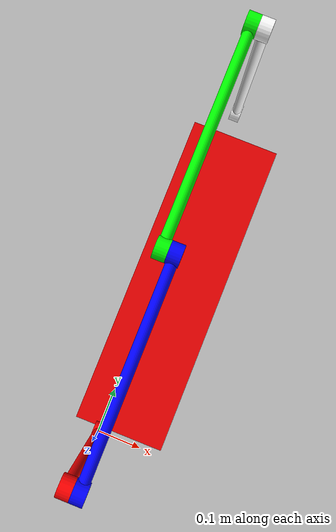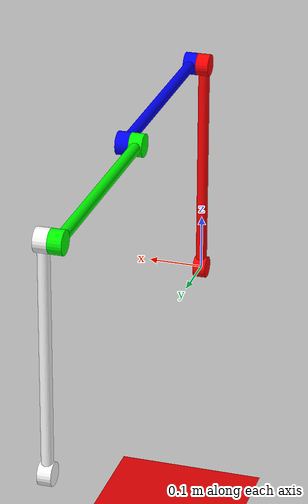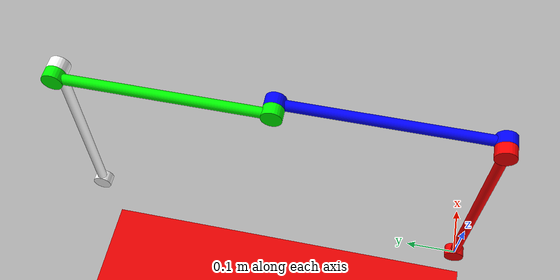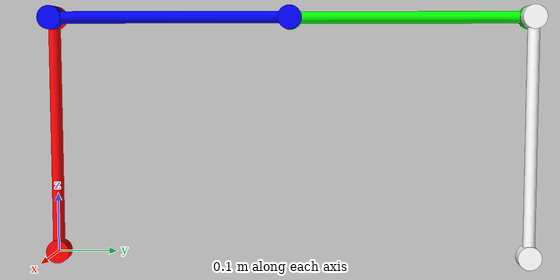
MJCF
<mujoco>
    <option timestep="0.0002" />
    <actuator>
        <motor gear="0.05" joint="hinge_1" name="actuator_motor" ctrlrange="-300 300" ctrllimited="true"/>
        <motor gear="0.05" joint="hinge_5" name="actuator_motor2" ctrlrange="-300 300" ctrllimited="true"/>
    </actuator>
    <asset>
        <material name="blue" rgba="0 0 1 1" />
        <material name="green" rgba="0 1 0 1" />
        <material name="red" rgba="1 0 0 1" />
        <material name="white" rgba="1 1 1 1" />
    </asset>
    <worldbody>
        <geom type="plane" size="1 1 0.1" pos="0 0 -0.5" rgba=".9 0 0 1" />
        <light diffuse=".5 .5 .5" pos="0 0 10" dir="0 0 -1" />
        <body name="link_1" pos="0 0 0">
            <joint name="hinge_1" pos="0 0 0" axis="1 0 0" />
            <geom type="cylinder" size=".01 0.2" pos="0 0 0.2" euler="0 0 0" material="red" />
            <geom type="cylinder" size=".0198 .0115" pos="0 0 0.4" euler="0 90 0" material="red" mass="0.065"/>
            <geom type="cylinder" size=".0198 .0115" pos="0 0 0" euler="0 90 0" material="red" mass="0.065"/>
            <body name="link_2" pos="0.023 0 0.4" euler="0 0 0">
                <joint name="hinge_2" pos="0 0 0" axis="1 0 0" />
                <geom type="cylinder" size=".01 0.2" pos="0 0.2 0" euler="90 0 0" material="blue" />
                <geom type="cylinder" size=".0198 .0115" pos="0 0.4 0" euler="0 90 0" material="blue" />
                <geom type="cylinder" size=".0198 .0115" pos="0 0 0" euler="0 90 0" material="blue" />
                <body name="link_3" pos="-0.023 0.4 0" euler="-90 0 0">
                    <joint name="hinge_3" pos="0 0 0" axis="1 0 0" />
                    <geom type="cylinder" size=".01 0.2" pos="0 0 0.2" euler="0 0 0" material="green" />
                    <geom type="cylinder" size=".0198 .0115" pos="0 0 0" euler="0 90 0" material="green" />
                    <geom type="cylinder" size=".0198 .0115" pos="0 0 0.4" euler="0 90 0" material="green" />
                    <body name="link_4" pos="0.023 0 0.4" euler="180 0 0">
                        <joint name="hinge_4" pos="0 0 0" axis="1 0 0" />
                        <geom type="cylinder" size=".01 0.2" pos="0 -0.2 0" euler="90 0 0" material="white" />
                        <geom type="cylinder" size=".0198 .0115" pos="0 0 0" euler="0 90 0" material="white" />
                        <body name="link_5" pos="0 -0.4 0" euler="0 0 0">
                            <joint name="hinge_5" pos="0 0 0" axis="1 0 0" />
                                <geom type="cylinder" size=".0198 .0115" pos="0 0 0" euler="0 90 0" material="white" />
                        </body>
                    </body>
                </body>
            </body>
        </body>
    </worldbody>
    <equality>
        <connect name="kinematic_link" active="true" body1="link_5" anchor="0 0 0" />
    </equality>
</mujoco>
